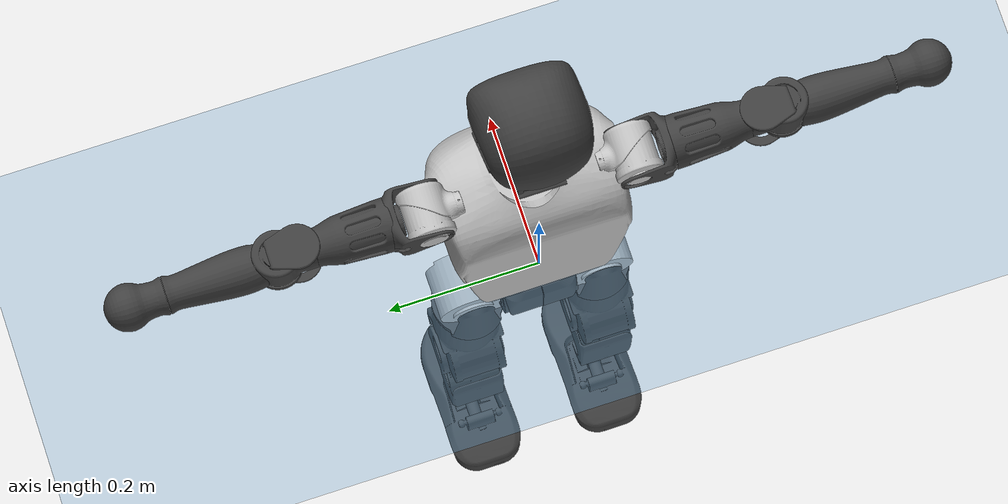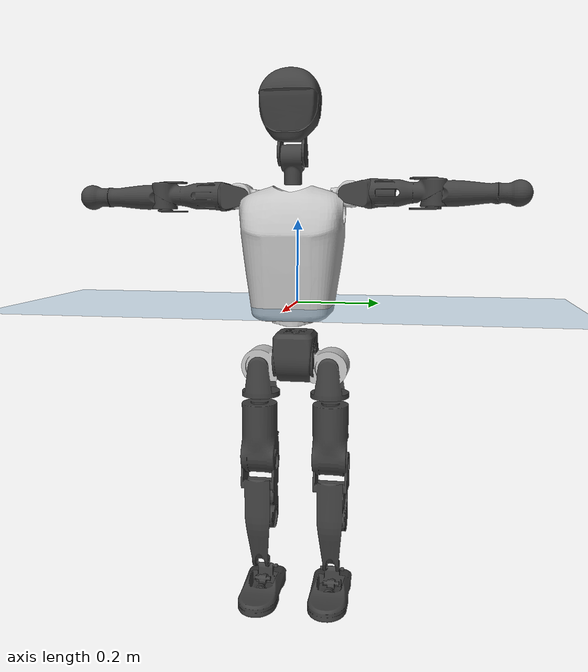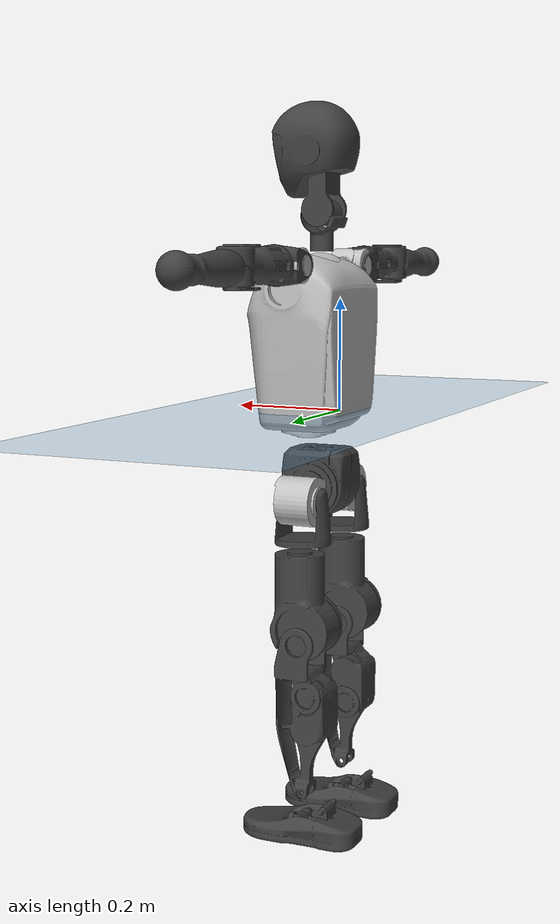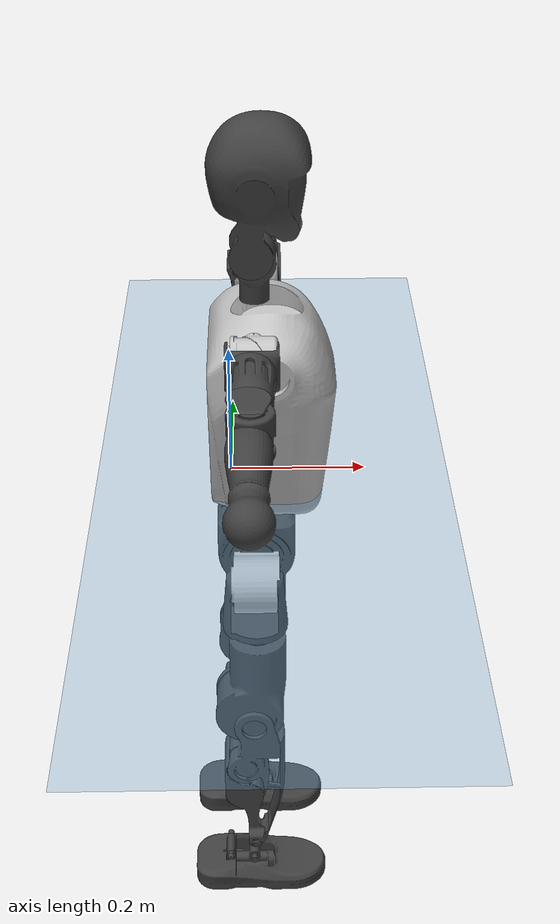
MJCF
<mujoco model="T1">
  <compiler angle="radian" assetdir="assets" balanceinertia="true" inertiafromgeom="false"/>

  <option timestep="0.005" density="1.2" viscosity="2e-05"/>

  <size nkey="1"/>

  <visual>
    <quality shadowsize="8192"/>
    <map shadowclip="0.5"/>
  </visual>

  <default>
    <default class="/">
      <joint armature="0.01" damping="0.01" frictionloss="0.1"/>
      <geom contype="0" conaffinity="0" group="1" solref="-1000 -80"/>
      <site size="0.01 0.005 0.005" group="5"/>
      <general forcelimited="true" biastype="affine" gainprm="25" biasprm="0 -25 -0.6"/>
      <default class="t1">
        <geom rgba="0.25 0.25 0.25 1"/>
        <default class="visual">
          <geom type="mesh" group="2"/>
        </default>
        <default class="collision">
          <geom group="3"/>
        </default>
        <default class="foot">
          <geom size="0.1115 0.05 0.015" type="box" condim="6" group="4" priority="1" solimp="0.015 1 0.015"/>
        </default>
        <default class="reward_collision_sphere">
          <geom group="5" rgba="1 0 0 1"/>
        </default>
      </default>
    </default>
  </default>

  <asset>
    <texture type="skybox" colorspace="auto" name="//unnamed_texture_0" builtin="gradient" rgb1="0.95 0.95 0.95" rgb2="0.95 0.95 0.95" width="100" height="600"/>
    <texture type="2d" colorspace="auto" name="texplane" builtin="checker" rgb1="0.345 0.575 0.748" rgb2="0.345 0.575 0.748" markrgb="1 1 1" width="512" height="512"/>
    <material name="MatPlane" class="/" texture="texplane" texuniform="true" texrepeat="2 2" specular="0.9"/>
    <mesh name="Trunk" class="/" file="Trunk.stl"/>
    <mesh name="H1" class="/" file="H1.stl"/>
    <mesh name="H2" class="/" file="H2.stl"/>
    <mesh name="AL1" class="/" file="AL1.stl"/>
    <mesh name="AL2" class="/" file="AL2.stl"/>
    <mesh name="AL3" class="/" file="AL3.stl"/>
    <mesh name="left_hand_link" class="/" file="left_hand_link.stl"/>
    <mesh name="AR1" class="/" file="AR1.stl"/>
    <mesh name="AR2" class="/" file="AR2.stl"/>
    <mesh name="AR3" class="/" file="AR3.stl"/>
    <mesh name="right_hand_link" class="/" file="right_hand_link.stl"/>
    <mesh name="Waist" class="/" file="Waist.stl"/>
    <mesh name="Hip_Pitch_Left" class="/" file="Hip_Pitch_Left.stl"/>
    <mesh name="Hip_Roll_Left" class="/" file="Hip_Roll_Left.stl"/>
    <mesh name="Hip_Yaw_Left" class="/" file="Hip_Yaw_Left.stl"/>
    <mesh name="Shank_Left" class="/" file="Shank_Left.stl"/>
    <mesh name="Ankle_Cross_Left" class="/" file="Ankle_Cross_Left.stl"/>
    <mesh name="left_foot_link" class="/" file="left_foot_link.stl"/>
    <mesh name="Hip_Pitch_Right" class="/" file="Hip_Pitch_Right.stl"/>
    <mesh name="Hip_Roll_Right" class="/" file="Hip_Roll_Right.stl"/>
    <mesh name="Hip_Yaw_Right" class="/" file="Hip_Yaw_Right.stl"/>
    <mesh name="Shank_Right" class="/" file="Shank_Right.stl"/>
    <mesh name="Ankle_Cross_Right" class="/" file="Ankle_Cross_Right.stl"/>
    <mesh name="right_foot_link" class="/" file="right_foot_link.stl"/>
  </asset>

  <worldbody>
    <geom name="floor" class="/" size="100 100 0.125" type="plane" group="0" material="MatPlane"/>
    <light name="toplight_shadow" class="/" pos="0 0 5" dir="0.0990148 0.0990148 -0.990148" type="directional" ambient="0.04 0.04 0.04" diffuse="0.55 0.55 0.55" specular="0.12 0.12 0.12"/>
    <light name="toplight_fill" class="/" pos="0 0 5" dir="0.0990148 0.0990148 -0.990148" type="directional" castshadow="false" ambient="0.04 0.04 0.04" diffuse="0.3 0.3 0.3" specular="0.08 0.08 0.08"/>
    <body name="trunk" childclass="t1" pos="0.000136201 -0.00166832 0.000891693" quat="0.999999 0.000204727 -0.000619893 0.00110674">
      <inertial pos="0.0328531 -0.000795616 0.125481" quat="0.999971 0.000302935 -0.00723579 0.00229703" mass="7.60687" diaginertia="0.00908658 0.0273064 0.12741"/>
      <joint name="//unnamed_joint_0" type="free" armature="0" damping="0" frictionloss="0"/>
      <geom name="//unnamed_geom_1" class="visual" rgba="0.76 0.76 0.76 1" mesh="Trunk"/>
      <geom name="//unnamed_geom_2" class="collision" size="0.0653818 0.0871757 0.130764" pos="0.0376804 0 0.140467" type="box"/>
      <geom name="//unnamed_geom_3" class="reward_collision_sphere" size="0.100252" pos="0.0376804 0 0.117056"/>
      <geom name="//unnamed_geom_4" class="reward_collision_sphere" size="0.0130764" pos="0.0376804 0.0694198 0"/>
      <geom name="//unnamed_geom_5" class="reward_collision_sphere" size="0.0130764" pos="0.0376804 -0.0694198 0"/>
      <geom name="//unnamed_geom_6" class="reward_collision_sphere" size="0.0130764" pos="0.0376804 0.0873873 0.210701"/>
      <geom name="//unnamed_geom_7" class="reward_collision_sphere" size="0.0130764" pos="0.0376804 -0.0873873 0.210701"/>
      <site name="imu" pos="0.0118266 -0.0135595 0.0108332" size="0.00871757"/>
      <camera name="track" pos="0 -1.63341 0" quat="0.707107 0.707107 0 0" mode="trackcom"/>
      <camera name="ego_camera" pos="0.0766168 0 0.491635" quat="-0.5 -0.5 0.5 0.5"/>
      <body name="H1" pos="0.0384235 -0.00263411 0.281707" quat="0.999999 0.00088804 -6.5203e-05 -0.000462597">
        <inertial pos="-0.00114108 -0.000539759 0.0697914" quat="0.76171 -0.018801 0.00846009 0.64759" mass="0.278282" diaginertia="2.32783e-05 8.27423e-05 0.000327239"/>
        <joint name="AAHead_yaw" pos="0 0 0" axis="-0.00742932 -0.000194139 0.999972" range="-1.53052 1.58539" armature="0.00758051" damping="0.0123354" frictionloss="0.0833443"/>
        <geom name="//unnamed_geom_8" class="visual" mesh="H1"/>
        <body name="H2" pos="-0.00393593 -0.00150838 0.0731155" quat="0.999999 0.000503266 -0.000656439 0.000561987">
          <inertial pos="0.00534482 0.00196104 0.115176" quat="0.987398 0.1146 -0.070738 -0.0831201" mass="0.400921" diaginertia="0.000195745 0.000693363 0.00383467"/>
          <joint name="Head_pitch" pos="0 0 0" axis="-0.00310674 -0.999995 -0.000121405" range="-1.26533 0.320896" armature="0.00997299" damping="0" frictionloss="0.0806515"/>
          <geom name="//unnamed_geom_9" class="visual" mesh="H2"/>
          <geom name="//unnamed_geom_10" class="collision" size="0.0697405" pos="0.00628007 0 0.128762"/>
          <geom name="//unnamed_geom_11" class="reward_collision_sphere" size="0.0784581" pos="0.0125601 0 0.117056"/>
        </body>
      </body>
      <body name="AL1" pos="0.0406115 0.0880447 0.25932" quat="1 -1.98815e-05 0.000513845 -3.01584e-05">
        <inertial pos="-0.00017839 0.0360684 0.00036597" quat="0.508029 0.500129 -0.50365 0.48797" mass="0.352061" diaginertia="0.000135385 0.000453402 0.00062103"/>
        <joint name="Left_Shoulder_Pitch" pos="0 0 0" axis="-0.00604798 0.999978 -0.00258826" range="-3.25726 1.20014" armature="0.00764263" damping="0.0071792" frictionloss="0.0818553"/>
        <geom name="//unnamed_geom_12" class="visual" rgba="0.76 0.76 0.76 1" mesh="AL1"/>
        <body name="AL2" pos="-4.02918e-05 0.0413286 0.000251614" quat="1 -1.22379e-06 8.13213e-05 -1.28668e-05">
          <inertial pos="0.00375738 0.0284506 -0.00134308" quat="0.487925 0.51179 -0.488057 0.511664" mass="0.105507" diaginertia="3.99462e-05 0.000129347 0.000401657"/>
          <joint name="Left_Shoulder_Roll" pos="0 0 0" axis="-0.999969 -0.0078713 0.000898384" stiffness="0.00247115" range="-1.61515 1.69785" armature="0.00964499" damping="0" frictionloss="0.089102"/>
          <geom name="//unnamed_geom_13" class="visual" mesh="AL2"/>
          <body name="AL3" pos="0.00110071 0.0484358 0.00158468" quat="1 0.000200711 -0.000578345 -0.000431006">
            <inertial pos="0.000792793 0.0697112 -0.000783344" quat="0.704505 0.709629 -0.00989566 0.00150462" mass="0.639701" diaginertia="0.0012073 0.00455826 0.0013703"/>
            <joint name="Left_Elbow_Pitch" pos="0 0 0" axis="0.00660819 -0.999864 0.0151157" stiffness="0.0186231" range="-2.31925 2.26313" armature="0.0102837" damping="0.0332298" frictionloss="0.0848711"/>
            <geom name="//unnamed_geom_14" class="visual" mesh="AL3"/>
            <geom name="//unnamed_geom_15" class="collision" size="0.0261527 0.0653818" pos="0 0.0408352 0" quat="0.707105 0.707108 0 0" type="cylinder"/>
            <geom name="//unnamed_geom_16" class="reward_collision_sphere" size="0.0313832"/>
            <body name="left_hand_link" pos="0.00014658 0.120408 -0.00178132" quat="0.999999 -0.000404989 -0.000830137 -0.000614378">
              <inertial pos="-0.000541407 0.0915571 0.0024225" quat="0.708465 0.705745 -0.00101275 -0.000587612" mass="0.220693" diaginertia="0.000788486 0.00294701 0.000488805"/>
              <joint name="Left_Elbow_Yaw" pos="0 0 0" axis="-0.00118995 0.00392316 0.999992" range="-2.48582 0.00978099" armature="0.00765913" damping="0.0131112" frictionloss="0.0803625"/>
              <geom name="//unnamed_geom_17" class="visual" mesh="left_hand_link"/>
              <geom name="//unnamed_geom_18" class="collision" size="0.0261527 0.0762787" pos="0 0.106171 0" quat="0.707105 0.707108 0 0" type="cylinder"/>
              <geom name="//unnamed_geom_19" class="reward_collision_sphere" size="0.0435878"/>
              <geom name="//unnamed_geom_20" class="reward_collision_sphere" size="0.0305115" pos="0 0.0898374 0"/>
              <geom name="//unnamed_geom_21" class="reward_collision_sphere" size="0.0305115" pos="0 0.175591 0"/>
            </body>
          </body>
        </body>
      </body>
      <body name="AR1" pos="0.0366526 -0.0845012 0.255087" quat="1 -0.000302061 0.00052682 -0.000620876">
        <inertial pos="0.00145625 -0.0343416 0.000451354" quat="0.503366 0.492575 -0.517519 0.485969" mass="0.358683" diaginertia="0.00012976 0.000456946 0.0006221"/>
        <joint name="Right_Shoulder_Pitch" pos="0 0 0" axis="0.00264598 -0.999996 0.000219095" range="-1.23064 3.30826" armature="0.00835799" damping="0.00576656" frictionloss="0.0845797"/>
        <geom name="//unnamed_geom_22" class="visual" rgba="0.76 0.76 0.76 1" mesh="AR1"/>
        <body name="AR2" pos="-0.00283361 -0.0403974 -0.00132385" quat="0.999999 -0.000579828 0.0010401 0.000277046">
          <inertial pos="0.00513626 -0.0293754 0.00225916" quat="0.510531 0.488486 -0.510907 0.489606" mass="0.105382" diaginertia="3.957e-05 0.000123546 0.000397027"/>
          <joint name="Right_Shoulder_Roll" pos="0 0 0" axis="-0.999886 -0.0147157 0.00330034" range="-1.70147 1.51591" armature="0.00865796" damping="0.0116699" frictionloss="0.0955256"/>
          <geom name="//unnamed_geom_23" class="visual" mesh="AR2"/>
          <body name="AR3" pos="-0.00149922 -0.0521065 0.00221232" quat="1 0.00028129 3.79821e-05 -0.000172904">
            <inertial pos="0.00027302 -0.0676004 -0.000359709" quat="0.708975 0.705233 -0.000184826 0.000745656" mass="0.690123" diaginertia="0.00127678 0.00458455 0.00134967"/>
            <joint name="Right_Elbow_Pitch" pos="0 0 0" axis="0.00928647 0.999931 -0.00713512" stiffness="0.00957804" range="-2.24302 2.26299" armature="0.00849646" damping="0.00609311" frictionloss="0.088711"/>
            <geom name="//unnamed_geom_24" class="visual" mesh="AR3"/>
            <geom name="//unnamed_geom_25" class="collision" size="0.0261527 0.0653818" pos="0 -0.0408352 0" quat="0.707105 0.707108 0 0" type="cylinder"/>
            <geom name="//unnamed_geom_26" class="reward_collision_sphere" size="0.0313832"/>
            <body name="right_hand_link" pos="-0.00232762 -0.119073 -0.00245688" quat="0.999999 0.000394876 -0.000117103 0.00106798">
              <inertial pos="-0.00121868 -0.0917255 0.000868452" quat="0.703398 0.710791 -0.000394251 -0.00277092" mass="0.211946" diaginertia="0.000830912 0.00299148 0.000473848"/>
              <joint name="Right_Elbow_Yaw" pos="0 0 0" axis="0.00839826 0.00647809 0.999944" range="0.0350953 2.42314" armature="0.00947523" damping="0" frictionloss="0.0909062"/>
              <geom name="//unnamed_geom_27" class="visual" mesh="right_hand_link"/>
              <geom name="//unnamed_geom_28" class="collision" size="0.0261527 0.0762787" pos="0 -0.106171 0" quat="0.707105 0.707108 0 0" type="cylinder"/>
              <geom name="//unnamed_geom_29" class="reward_collision_sphere" size="0.0435878"/>
              <geom name="//unnamed_geom_30" class="reward_collision_sphere" size="0.0305115" pos="0 -0.0898374 0"/>
              <geom name="//unnamed_geom_31" class="reward_collision_sphere" size="0.0305115" pos="0 -0.175591 0"/>
            </body>
          </body>
        </body>
      </body>
      <body name="Waist" pos="0.0362366 0.0028863 -0.136023" quat="0.999999 0.000785004 0.000721641 0.000801792">
        <inertial pos="0.00535995 0.000154429 0.00835889" quat="0.984076 -0.00151673 -0.177727 -0.00207709" mass="1.59966" diaginertia="0.00052679 0.00180255 0.0103426"/>
        <joint name="Waist" pos="0 0 0" axis="0.0124692 -0.00683214 0.999899" range="-1.51711 1.5194" armature="0.00779479" damping="0" frictionloss="0.0909835"/>
        <geom name="//unnamed_geom_32" class="visual" mesh="Waist"/>
        <body name="Hip_Pitch_Left" pos="0.00264734 0.0870809 0.000616768" quat="0.999998 0.00141115 -0.00136308 7.82755e-05">
          <inertial pos="0.00038861 -0.00847696 -0.0211158" quat="0.975191 0.22094 0.013586 0.00193591" mass="0.718734" diaginertia="0.0001819 0.000531107 0.00276092"/>
          <joint name="Left_Hip_Pitch" pos="0 0 0" axis="-0.00938517 0.999907 -0.00992603" stiffness="0.00887266" range="-1.85683 1.56806" armature="0.00873791" damping="0.00634595" frictionloss="0.0748459"/>
          <geom name="//unnamed_geom_33" class="visual" rgba="0.76 0.76 0.76 1" mesh="Hip_Pitch_Left"/>
          <body name="Hip_Roll_Left" pos="-0.00286659 -0.00194288 -0.0197413" quat="0.999998 0.000435002 0.00172545 0.0012686">
            <inertial pos="0.00171806 -0.00240204 -0.0606905" quat="0.703494 -0.00840874 -0.00501176 0.710634" mass="0.259752" diaginertia="0.000171045 0.0005743 0.0011798"/>
            <joint name="Left_Hip_Roll" pos="0 0 0" axis="-0.99989 0.0105025 -0.0105095" stiffness="0.00498841" range="-1.5764 0.193192" armature="0.00896689" damping="0.00714266" frictionloss="0.0884055"/>
            <geom name="//unnamed_geom_34" class="visual" mesh="Hip_Roll_Left"/>
            <geom name="//unnamed_geom_35" class="reward_collision_sphere" size="0.0479466"/>
            <body name="Hip_Yaw_Left" pos="0.00286615 0.00263331 -0.0945606" quat="1 -0.000469106 -0.000233842 -0.000135155">
              <inertial pos="-0.00353922 -0.00403488 -0.106521" quat="0.695193 -0.0456679 -0.0373177 0.7164" mass="1.38311" diaginertia="0.00241244 0.00882415 0.00561636"/>
              <joint name="Left_Hip_Yaw" pos="0 0 0" axis="0.0116077 -0.000364388 -0.999933" stiffness="0.00470834" range="-1.00733 1.0144" armature="0.00869067" damping="0" frictionloss="0.0913175"/>
              <geom name="//unnamed_geom_36" class="visual" mesh="Hip_Yaw_Left"/>
              <geom name="//unnamed_geom_37" class="collision" size="0.0435878 0.0697405" type="cylinder"/>
              <body name="Shank_Left" pos="-0.0117607 0.00186194 -0.15863" quat="1 -2.02404e-05 -3.89147e-05 5.21921e-05">
                <inertial pos="-0.00453891 -0.000786381 -0.143121" quat="0.997269 -0.00550424 -0.0267098 0.0686347" mass="1.07964" diaginertia="0.00329413 0.0124311 0.00396226"/>
                <joint name="Left_Knee_Pitch" pos="0 0 0" axis="-0.0110856 0.999874 0.0113749" range="0.0173188 2.35958" armature="0.00877583" damping="0" frictionloss="0.0862967"/>
                <geom name="//unnamed_geom_38" class="visual" mesh="Shank_Left"/>
                <geom name="//unnamed_geom_39" class="collision" size="0.0435878 0.0653818" pos="0 0 -0.140467" type="cylinder"/>
                <geom name="//unnamed_geom_40" class="reward_collision_sphere" size="0.0566642"/>
                <body name="Ankle_Cross_Left" pos="0.00130374 -0.000311569 -0.327435" quat="0.999999 0.000193538 -0.00118323 0.000115427">
                  <inertial pos="-0.0035957 0.000156073 -0.00674006" quat="0.443433 0.550666 0.550906 0.443437" mass="0.0490703" diaginertia="2.91914e-06 9.59084e-06 2.55827e-05"/>
                  <joint name="Left_Ankle_Pitch" pos="0 0 0" axis="-0.00470745 0.999983 -0.00338918" range="-0.816025 0.299789" armature="0.0092578" damping="0.0267519" frictionloss="0.0932211"/>
                  <geom name="//unnamed_geom_41" class="visual" mesh="Ankle_Cross_Left"/>
                  <body name="left_foot_link" pos="-0.00178664 -0.00221247 -0.0125926" quat="0.999999 -0.000212722 0.000559418 0.00119187">
                    <inertial pos="-0.00288456 0.00296759 -0.00980674" quat="0.000323211 0.620499 0.000764496 0.784207" mass="0.425134" diaginertia="0.000242425 0.000817245 0.00434427"/>
                    <joint name="Left_Ankle_Roll" pos="0 0 0" axis="-0.999989 -0.00459265 0.000255141" range="-0.449908 0.381506" armature="0.00852939" damping="0.00784389" frictionloss="0.0685943"/>
                    <geom name="//unnamed_geom_42" class="visual" mesh="left_foot_link"/>
                    <geom name="left_foot" class="foot" size="0.104453 0.0490812 0.0109412" pos="0.00628007 0 -0.0175584"/>
                    <geom name="//unnamed_geom_44" class="reward_collision_sphere" size="0.0453313" pos="0.00628007 0 -0.0175584"/>
                    <geom name="//unnamed_geom_45" class="reward_collision_sphere" size="0.0261527" pos="0.0596606 -0.0187842 -0.0175584"/>
                    <geom name="//unnamed_geom_46" class="reward_collision_sphere" size="0.0261527" pos="-0.0439605 -0.0187842 -0.0175584"/>
                    <site name="left_foot" class="foot" pos="0.00628007 0 -0.0175584" size="0.00871757"/>
                  </body>
                </body>
              </body>
            </body>
          </body>
        </body>
        <body name="Hip_Pitch_Right" pos="-0.00116271 -0.0873148 0.000423579" quat="1 -0.000111924 7.22367e-05 -0.00023732">
          <inertial pos="-0.00230096 0.00615613 -0.0230487" quat="0.975881 -0.218093 0.00853635 0.00439936" mass="0.683271" diaginertia="0.000183561 0.000567302 0.00276833"/>
          <joint name="Right_Hip_Pitch" pos="0 0 0" axis="0.000375283 -0.999986 0.00521972" range="-1.56609 1.76528" armature="0.00964475" damping="0.00706011" frictionloss="0.0832483"/>
          <geom name="//unnamed_geom_47" class="visual" rgba="0.76 0.76 0.76 1" mesh="Hip_Pitch_Right"/>
          <body name="Hip_Roll_Right" pos="-9.44564e-05 -0.00151329 -0.0211146" quat="0.999999 -0.000967077 0.000599923 5.47869e-05">
            <inertial pos="-0.000669822 0.00113868 -0.0625322" quat="0.706571 -0.0064692 -0.00582768 0.707588" mass="0.263889" diaginertia="0.000175357 0.000570109 0.00118448"/>
            <joint name="Right_Hip_Roll" pos="0 0 0" axis="-0.999844 -0.0154886 0.00848133" stiffness="0.0301225" range="-0.246009 1.58454" armature="0.00794395" damping="0.00669058" frictionloss="0.0833803"/>
            <geom name="//unnamed_geom_48" class="visual" mesh="Hip_Roll_Right"/>
            <geom name="//unnamed_geom_49" class="reward_collision_sphere" size="0.0479466"/>
            <body name="Hip_Yaw_Right" pos="0.000823358 -0.00391814 -0.0967479" quat="1 0.000245479 -6.88061e-05 0.000306531">
              <inertial pos="-0.00454653 -0.000931081 -0.101313" quat="0.713669 -0.0302853 -0.0349564 0.698955" mass="1.46354" diaginertia="0.00257995 0.00963463 0.00596981"/>
              <joint name="Right_Hip_Yaw" pos="0 0 0" axis="0.000385681 -0.015431 -0.999881" range="-1.028 0.972309" armature="0.00918542" damping="0" frictionloss="0.0855014"/>
              <geom name="//unnamed_geom_50" class="visual" mesh="Hip_Yaw_Right"/>
              <geom name="//unnamed_geom_51" class="collision" size="0.0435878 0.0697405" type="cylinder"/>
              <body name="Shank_Right" pos="-0.00722565 -0.000368832 -0.156167" quat="1 2.8411e-05 -0.000132168 0.000582791">
                <inertial pos="-0.00773241 0.00266754 -0.145894" quat="0.999246 -0.00340826 -0.0217649 -0.0319641" mass="1.18674" diaginertia="0.00345227 0.0126248 0.00434558"/>
                <joint name="Right_Knee_Pitch" pos="0 0 0" axis="0.00132765 -0.999998 -0.00156779" range="-2.33239 0.0375889" armature="0.0091955" damping="0.00339866" frictionloss="0.086538"/>
                <geom name="//unnamed_geom_52" class="visual" mesh="Shank_Right"/>
                <geom name="//unnamed_geom_53" class="collision" size="0.0435878 0.0653818" pos="0 0 -0.140467" type="cylinder"/>
                <geom name="//unnamed_geom_54" class="reward_collision_sphere" size="0.0566642"/>
                <body name="Ankle_Cross_Right" pos="-0.00244056 0.00271545 -0.328947" quat="0.999999 -0.000663945 -0.000369007 -0.000886586">
                  <inertial pos="-0.00479384 -0.000263597 -0.0111392" quat="0.44424 0.550942 0.548984 0.44467" mass="0.0486925" diaginertia="2.92087e-06 9.49387e-06 2.43781e-05"/>
                  <joint name="Right_Ankle_Pitch" pos="0 0 0" axis="0.00415672 -0.999921 0.0118374" stiffness="0.00731418" range="-0.391693 0.810992" armature="0.00846008" damping="0.00768832" frictionloss="0.0862106"/>
                  <geom name="//unnamed_geom_55" class="visual" mesh="Ankle_Cross_Right"/>
                  <body name="right_foot_link" pos="0.00100342 -0.000151695 -0.0149722" quat="1 -7.62449e-05 0.000109334 4.23698e-05">
                    <inertial pos="-3.39767e-06 -0.00187561 -0.0109931" quat="0.00578202 0.622922 -0.0115329 0.782178" mass="0.453365" diaginertia="0.000272291 0.000859929 0.00466184"/>
                    <joint name="Right_Ankle_Roll" pos="0 0 0" axis="-0.999992 0.00389334 -3.86832e-05" range="-0.408758 0.399177" armature="0.00976127" damping="0.0151553" frictionloss="0.0980394"/>
                    <geom name="//unnamed_geom_56" class="visual" mesh="right_foot_link"/>
                    <geom name="right_foot" class="foot" size="0.0866443 0.0464889 0.0124311" pos="0.00628007 0 -0.0175584"/>
                    <geom name="//unnamed_geom_58" class="reward_collision_sphere" size="0.0348703"/>
                    <geom name="//unnamed_geom_59" class="reward_collision_sphere" size="0.0261527" pos="0.00628007 0 -0.0175584"/>
                    <geom name="//unnamed_geom_60" class="reward_collision_sphere" size="0.0261527" pos="0.0596606 0.0187842 -0.0175584"/>
                    <geom name="//unnamed_geom_61" class="reward_collision_sphere" size="0.0261527" pos="-0.0439605 0.0187842 -0.0175584"/>
                    <site name="right_foot" class="foot" pos="0.00628007 0 -0.0175584" size="0.00871757"/>
                  </body>
                </body>
              </body>
            </body>
          </body>
        </body>
      </body>
    </body>
  </worldbody>

  <contact>
    <pair class="/" geom1="floor" geom2="left_foot" name="//unnamed_contact_0"/>
    <pair class="/" geom1="floor" geom2="right_foot" name="//unnamed_contact_1"/>
  </contact>

  <actuator>
    <general name="AAHead_yaw" class="/" joint="AAHead_yaw" forcerange="-5.50563 5.50563" gainprm="23.1589" biasprm="0 -23.1589 -0.514102"/>
    <general name="Head_pitch" class="/" joint="Head_pitch" forcerange="-6.69121 6.69121" gainprm="23.1589" biasprm="0 -23.1589 -0.514102"/>
    <general name="Left_Shoulder_Pitch" class="/" joint="Left_Shoulder_Pitch" forcerange="-16.4503 16.4503" gainprm="23.1589" biasprm="0 -23.1589 -0.514102"/>
    <general name="Left_Shoulder_Roll" class="/" joint="Left_Shoulder_Roll" forcerange="-14.6228 14.6228" gainprm="23.1589" biasprm="0 -23.1589 -0.514102"/>
    <general name="Left_Elbow_Pitch" class="/" joint="Left_Elbow_Pitch" forcerange="-17.3906 17.3906" gainprm="23.1589" biasprm="0 -23.1589 -0.514102"/>
    <general name="Left_Elbow_Yaw" class="/" joint="Left_Elbow_Yaw" forcerange="-14.8478 14.8478" gainprm="23.1589" biasprm="0 -23.1589 -0.514102"/>
    <general name="Right_Shoulder_Pitch" class="/" joint="Right_Shoulder_Pitch" forcerange="-14.5966 14.5966" gainprm="23.1589" biasprm="0 -23.1589 -0.514102"/>
    <general name="Right_Shoulder_Roll" class="/" joint="Right_Shoulder_Roll" forcerange="-14.2484 14.2484" gainprm="23.1589" biasprm="0 -23.1589 -0.514102"/>
    <general name="Right_Elbow_Pitch" class="/" joint="Right_Elbow_Pitch" forcerange="-15.602 15.602" gainprm="23.1589" biasprm="0 -23.1589 -0.514102"/>
    <general name="Right_Elbow_Yaw" class="/" joint="Right_Elbow_Yaw" forcerange="-15.2835 15.2835" gainprm="23.1589" biasprm="0 -23.1589 -0.514102"/>
    <general name="Waist" class="/" joint="Waist" forcerange="-26.1119 26.1119" gainprm="23.1589" biasprm="0 -23.1589 -0.514102"/>
    <general name="Left_Hip_Pitch" class="/" joint="Left_Hip_Pitch" forcerange="-35.5693 35.5693" gainprm="23.1589" biasprm="0 -23.1589 -0.514102"/>
    <general name="Left_Hip_Roll" class="/" joint="Left_Hip_Roll" forcerange="-24.281 24.281" gainprm="23.1589" biasprm="0 -23.1589 -0.514102"/>
    <general name="Left_Hip_Yaw" class="/" joint="Left_Hip_Yaw" forcerange="-29.0559 29.0559" gainprm="23.1589" biasprm="0 -23.1589 -0.514102"/>
    <general name="Left_Knee_Pitch" class="/" joint="Left_Knee_Pitch" forcerange="-57.8779 57.8779" gainprm="23.1589" biasprm="0 -23.1589 -0.514102"/>
    <general name="Left_Ankle_Pitch" class="/" joint="Left_Ankle_Pitch" forcerange="-16.8495 16.8495" gainprm="23.1589" biasprm="0 -23.1589 -0.514102"/>
    <general name="Left_Ankle_Roll" class="/" joint="Left_Ankle_Roll" forcerange="-13.1564 13.1564" gainprm="23.1589" biasprm="0 -23.1589 -0.514102"/>
    <general name="Right_Hip_Pitch" class="/" joint="Right_Hip_Pitch" forcerange="-43.1098 43.1098" gainprm="23.1589" biasprm="0 -23.1589 -0.514102"/>
    <general name="Right_Hip_Roll" class="/" joint="Right_Hip_Roll" forcerange="-26.9038 26.9038" gainprm="23.1589" biasprm="0 -23.1589 -0.514102"/>
    <general name="Right_Hip_Yaw" class="/" joint="Right_Hip_Yaw" forcerange="-28.0194 28.0194" gainprm="23.1589" biasprm="0 -23.1589 -0.514102"/>
    <general name="Right_Knee_Pitch" class="/" joint="Right_Knee_Pitch" forcerange="-52.0244 52.0244" gainprm="23.1589" biasprm="0 -23.1589 -0.514102"/>
    <general name="Right_Ankle_Pitch" class="/" joint="Right_Ankle_Pitch" forcerange="-18.123 18.123" gainprm="23.1589" biasprm="0 -23.1589 -0.514102"/>
    <general name="Right_Ankle_Roll" class="/" joint="Right_Ankle_Roll" forcerange="-13.0178 13.0178" gainprm="23.1589" biasprm="0 -23.1589 -0.514102"/>
  </actuator>

  <sensor>
    <gyro site="imu" name="imu_angular_velocity"/>
    <velocimeter site="imu" name="imu_linear_velocity"/>
    <framelinvel objtype="site" objname="left_foot" name="left_foot_global_linear_velocity"/>
    <framelinvel objtype="site" objname="right_foot" name="right_foot_global_linear_velocity"/>
  </sensor>

  <keyframe>
    <key name="home" qpos="0 0 0.6385 1 0 0 0 0 0 0 1.4 0 -0.4 0 -1.4 0 0.4 0 -0.4 0 0 0.8 -0.4 0 0.4 0 0 -0.8 0.4 0"/>
  </keyframe>
</mujoco>
